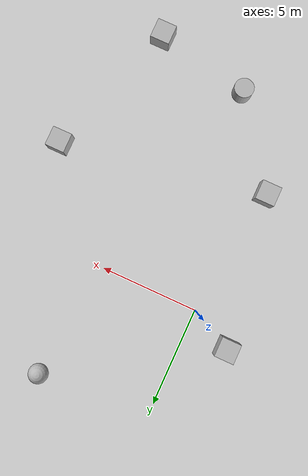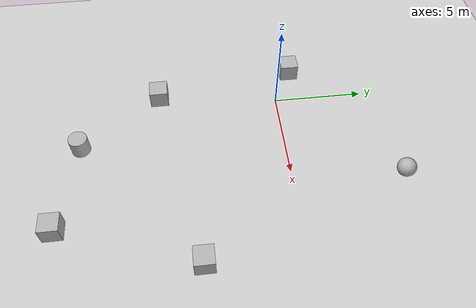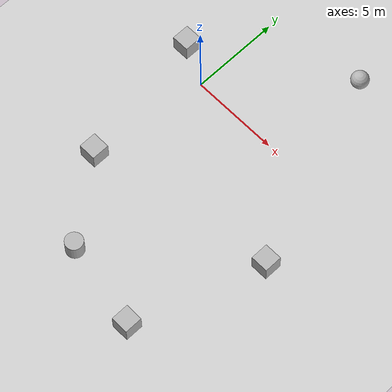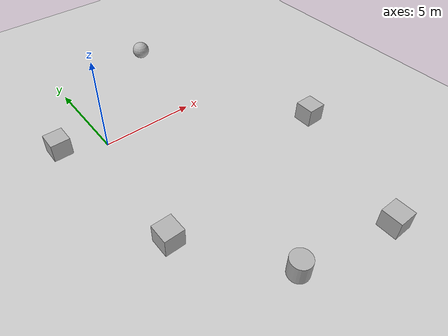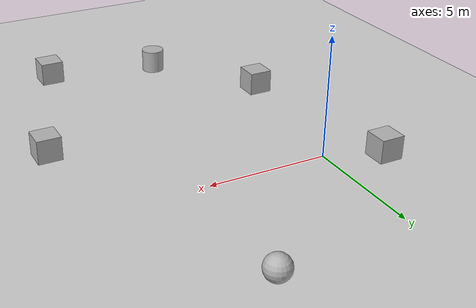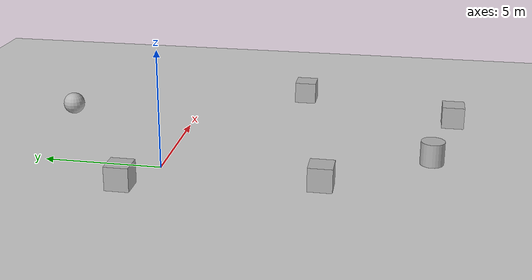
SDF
<sdf version="1.9">
 <world name="empty">
  <physics name="1ms" type="ignored">
   <max_step_size>0.001</max_step_size>
   <real_time_factor>1</real_time_factor>
   <real_time_update_rate>1000</real_time_update_rate>
  </physics>
  <plugin name="gz::sim::systems::Physics" filename="ignition-gazebo-physics-system"/>
  <plugin name="gz::sim::systems::UserCommands" filename="ignition-gazebo-user-commands-system"/>
  <plugin name="gz::sim::systems::SceneBroadcaster" filename="ignition-gazebo-scene-broadcaster-system"/>
  <plugin name="gz::sim::systems::Contact" filename="ignition-gazebo-contact-system"/>
  <gravity>0 0 -9.8</gravity>
  <magnetic_field>6e-06 2.3e-05 -4.2e-05</magnetic_field>
  <atmosphere type="adiabatic"/>
  <scene><ambient>0.4 0.4 0.4 1</ambient><background>0.7 0.7 0.7 1</background><shadows>true</shadows></scene>
  <model name="ground_plane">
   <static>true</static>
   <link name="link">
    <collision name="collision">
     <geometry><plane><normal>0 0 1</normal><size>100 100</size></plane></geometry>
    </collision>
    <visual name="visual">
     <geometry><plane><normal>0 0 1</normal><size>100 100</size></plane></geometry>
     <material>
      <ambient>0.8 0.8 0.8 1</ambient>
      <diffuse>0.8 0.8 0.8 1</diffuse>
      <specular>0.8 0.8 0.8 1</specular>
     </material>
    </visual>
    <inertial>
     <mass>1</mass>
     <inertia><ixx>1</ixx><ixy>0</ixy><ixz>0</ixz><iyy>1</iyy><iyz>0</iyz><izz>1</izz></inertia>
    </inertial>
   </link>
  </model>
  <model name="box">
   <pose>7.20617 -11.9835 0.5 0 -0 0</pose>
   <link name="box_link">
    <inertial>
     <inertia><ixx>0.16666</ixx><ixy>0</ixy><ixz>0</ixz><iyy>0.16666</iyy><iyz>0</iyz><izz>0.16666</izz></inertia>
     <mass>1</mass>
    </inertial>
    <collision name="box_collision"><geometry><box><size>1 1 1</size></box></geometry></collision>
    <visual name="box_visual">
     <geometry><box><size>1 1 1</size></box></geometry>
     <material>
      <ambient>0.3 0.3 0.3 1</ambient>
      <diffuse>0.7 0.7 0.7 1</diffuse>
      <specular>1 1 1 1</specular>
     </material>
    </visual>
   </link>
   <static>false</static>
  </model>
  <model name="box_0">
   <pose>9.64624 -4.86149 0.5 0 -0 0</pose>
   <link name="box_link">
    <inertial>
     <inertia><ixx>0.16666</ixx><ixy>0</ixy><ixz>0</ixz><iyy>0.16666</iyy><iyz>0</iyz><izz>0.16666</izz></inertia>
     <mass>1</mass>
    </inertial>
    <collision name="box_collision"><geometry><box><size>1 1 1</size></box></geometry></collision>
    <visual name="box_visual">
     <geometry><box><size>1 1 1</size></box></geometry>
     <material>
      <ambient>0.3 0.3 0.3 1</ambient>
      <diffuse>0.7 0.7 0.7 1</diffuse>
      <specular>1 1 1 1</specular>
     </material>
    </visual>
   </link>
   <static>false</static>
  </model>
  <model name="box_1">
   <pose>-2.1258 1.04404 0.5 0 -0 0</pose>
   <link name="box_link">
    <inertial>
     <inertia><ixx>0.16666</ixx><ixy>0</ixy><ixz>0</ixz><iyy>0.16666</iyy><iyz>0</iyz><izz>0.16666</izz></inertia>
     <mass>1</mass>
    </inertial>
    <collision name="box_collision"><geometry><box><size>1 1 1</size></box></geometry></collision>
    <visual name="box_visual">
     <geometry><box><size>1 1 1</size></box></geometry>
     <material>
      <ambient>0.3 0.3 0.3 1</ambient>
      <diffuse>0.7 0.7 0.7 1</diffuse>
      <specular>1 1 1 1</specular>
     </material>
    </visual>
   </link>
   <static>false</static>
  </model>
  <model name="sphere">
   <pose>5.73054 5.91408 0.5 0 -0 0</pose>
   <link name="sphere_link">
    <inertial>
     <inertia>
      <ixx>0.10000000000000001</ixx>
      <ixy>0</ixy>
      <ixz>0</ixz>
      <iyy>0.10000000000000001</iyy>
      <iyz>0</iyz>
      <izz>0.10000000000000001</izz>
     </inertia>
     <mass>1</mass>
    </inertial>
    <collision name="sphere_collision"><geometry><sphere><radius>0.5</radius></sphere></geometry></collision>
    <visual name="sphere_visual">
     <geometry><sphere><radius>0.5</radius></sphere></geometry>
     <material>
      <ambient>0.3 0.3 0.3 1</ambient>
      <diffuse>0.7 0.7 0.7 1</diffuse>
      <specular>1 1 1 1</specular>
     </material>
    </visual>
   </link>
   <static>false</static>
  </model>
  <model name="cylinder">
   <pose>2.36837 -11.0203 0.5 0 -0 0</pose>
   <link name="cylinder_link">
    <inertial>
     <inertia>
      <ixx>0.14580000000000001</ixx>
      <ixy>0</ixy>
      <ixz>0</ixz>
      <iyy>0.14580000000000001</iyy>
      <iyz>0</iyz>
      <izz>0.125</izz>
     </inertia>
     <mass>1</mass>
    </inertial>
    <collision name="cylinder_collision">
     <geometry><cylinder><radius>0.5</radius><length>1</length></cylinder></geometry>
    </collision>
    <visual name="cylinder_visual">
     <geometry><cylinder><radius>0.5</radius><length>1</length></cylinder></geometry>
     <material>
      <ambient>0.3 0.3 0.3 1</ambient>
      <diffuse>0.7 0.7 0.7 1</diffuse>
      <specular>1 1 1 1</specular>
     </material>
    </visual>
   </link>
   <static>false</static>
  </model>
  <model name="box_2">
   <pose>-0.836257 -6.72533 0.5 0 -0 0</pose>
   <link name="box_link">
    <inertial>
     <inertia><ixx>0.16666</ixx><ixy>0</ixy><ixz>0</ixz><iyy>0.16666</iyy><iyz>0</iyz><izz>0.16666</izz></inertia>
     <mass>1</mass>
    </inertial>
    <collision name="box_collision"><geometry><box><size>1 1 1</size></box></geometry></collision>
    <visual name="box_visual">
     <geometry><box><size>1 1 1</size></box></geometry>
     <material>
      <ambient>0.3 0.3 0.3 1</ambient>
      <diffuse>0.7 0.7 0.7 1</diffuse>
      <specular>1 1 1 1</specular>
     </material>
    </visual>
   </link>
   <static>false</static>
  </model>
  <light name="sun" type="directional">
   <pose>0 0 10 0 -0 0</pose>
   <intensity>1</intensity>
   <direction>-0.5 0.1 -0.9</direction>
   <diffuse>0.8 0.8 0.8 1</diffuse>
   <specular>0.2 0.2 0.2 1</specular>
   <attenuation>
    <range>1000</range>
    <linear>0.01</linear>
    <constant>0.90000000000000002</constant>
    <quadratic>0.001</quadratic>
   </attenuation>
   <spot><inner_angle>0</inner_angle><outer_angle>0</outer_angle><falloff>0</falloff></spot>
  </light>
 </world>
</sdf>
